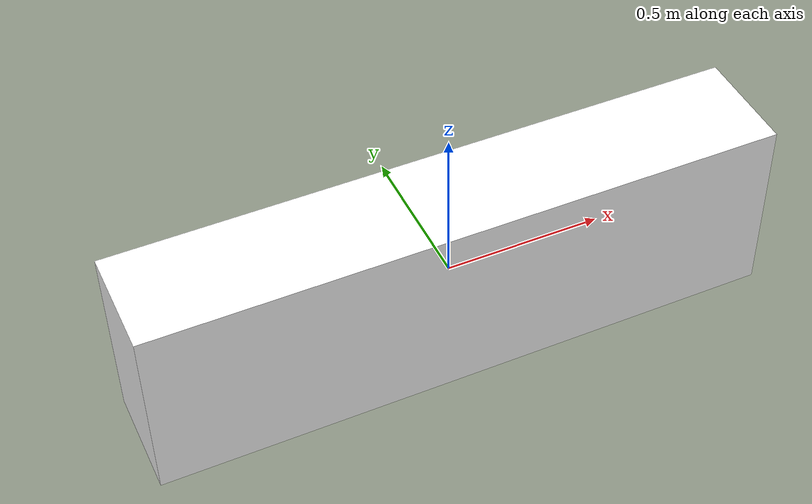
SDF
<?xml version='1.0'?>
<sdf version='1.0'>
  <model name='medium_wall'>
    <link name='medium_wall_10'>
      <pose frame=''>0 0 0 0 -0 0</pose>
      <self_collide>0</self_collide>
      <enable_wind>0</enable_wind>
      <kinematic>0</kinematic>
      <gravity>1</gravity>
      <inertial>
        <mass>1</mass>
        <pose frame=''>0 0 0 0 -0 0</pose>
        <inertia>
          <ixx>1</ixx>
          <ixy>0</ixy>
          <ixz>0</ixz>
          <iyy>1</iyy>
          <iyz>0</iyz>
          <izz>1</izz>
        </inertia>
      </inertial>
      <visual name='medium_wall_10_Visual_0'>
        <pose frame=''>0 0 0 0 -0 0</pose>
        <geometry>
          <box>
            <size>2 0.35 0.6</size>
          </box>
        </geometry>
        <material>
          <script>
            <uri>model://medium_wall/materials/scripts</uri>
            <uri>model://medium_wall/materials/textures</uri>
            <name>medium_wall</name>
          </script>
          <shader type='pixel'>
            <normal_map>__default__</normal_map>
          </shader>
          <ambient>1 1 1 1</ambient>
          <diffuse>1 1 1 1</diffuse>
          <specular>0 0 0 1</specular>
          <emissive>0 0 0 1</emissive>
        </material>
        <meta>
          <layer>0</layer>
        </meta>
        <transparency>0</transparency>
        <cast_shadows>1</cast_shadows>
      </visual>
      <collision name='medium_wall_10_Collision_0'>
        <laser_retro>0</laser_retro>
        <max_contacts>10</max_contacts>
        <pose frame=''>0 0 0 0 -0 0</pose>
        <geometry>
          <box>
            <size>2 0.35 0.6</size>
          </box>
        </geometry>
        <surface>
          <friction>
            <ode>
              <mu>1</mu>
              <mu2>1</mu2>
              <fdir1>0 0 0</fdir1>
              <slip1>0</slip1>
              <slip2>0</slip2>
            </ode>
            <torsional>
              <coefficient>1</coefficient>
              <patch_radius>0</patch_radius>
              <surface_radius>0</surface_radius>
              <use_patch_radius>1</use_patch_radius>
              <ode>
                <slip>0</slip>
              </ode>
            </torsional>
          </friction>
          <bounce>
            <restitution_coefficient>0</restitution_coefficient>
            <threshold>1e+06</threshold>
          </bounce>
          <contact>
            <collide_without_contact>0</collide_without_contact>
            <collide_without_contact_bitmask>1</collide_without_contact_bitmask>
            <collide_bitmask>1</collide_bitmask>
            <ode>
              <soft_cfm>0</soft_cfm>
              <soft_erp>0.2</soft_erp>
              <kp>1e+13</kp>
              <kd>1</kd>
              <max_vel>0.01</max_vel>
              <min_depth>0</min_depth>
            </ode>
            <bullet>
              <split_impulse>1</split_impulse>
              <split_impulse_penetration_threshold>-0.01</split_impulse_penetration_threshold>
              <soft_cfm>0</soft_cfm>
              <soft_erp>0.2</soft_erp>
              <kp>1e+13</kp>
              <kd>1</kd>
            </bullet>
          </contact>
        </surface>
      </collision>
    </link>
    <static>1</static>
    <allow_auto_disable>1</allow_auto_disable>
  </model>
</sdf>
